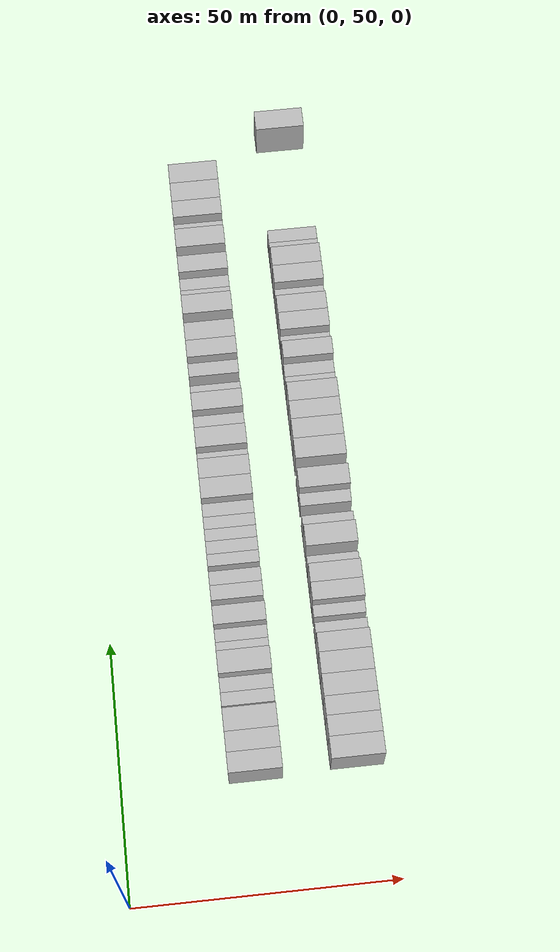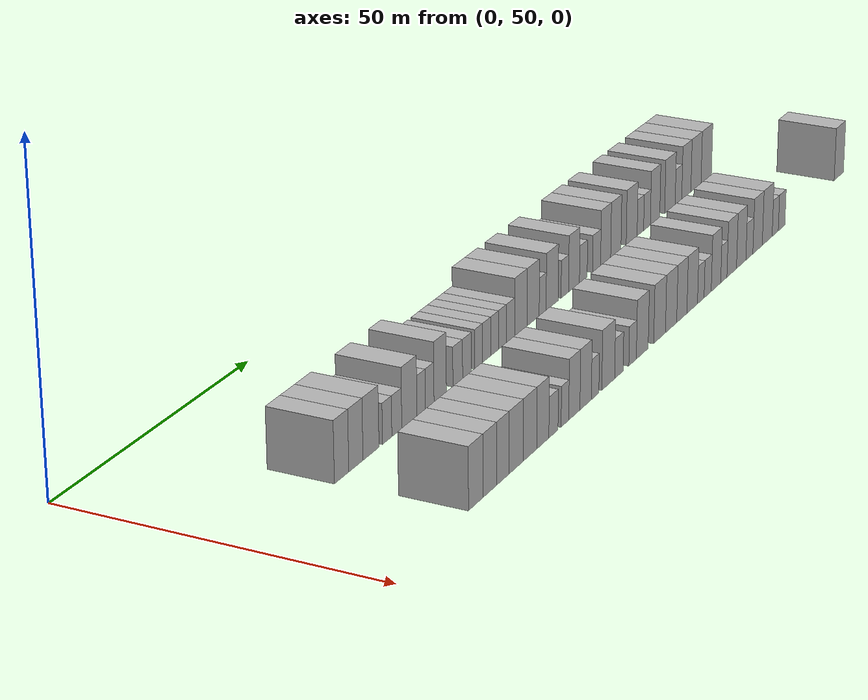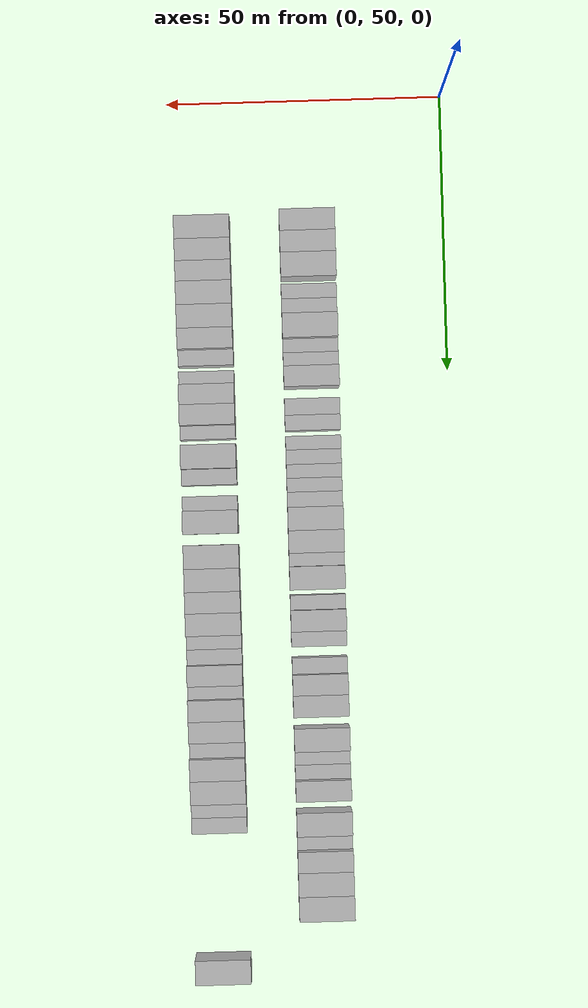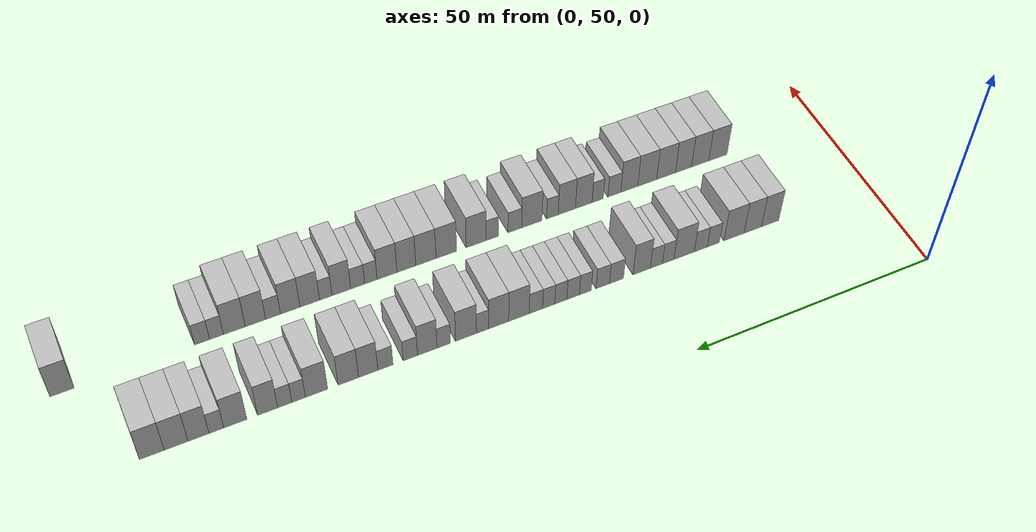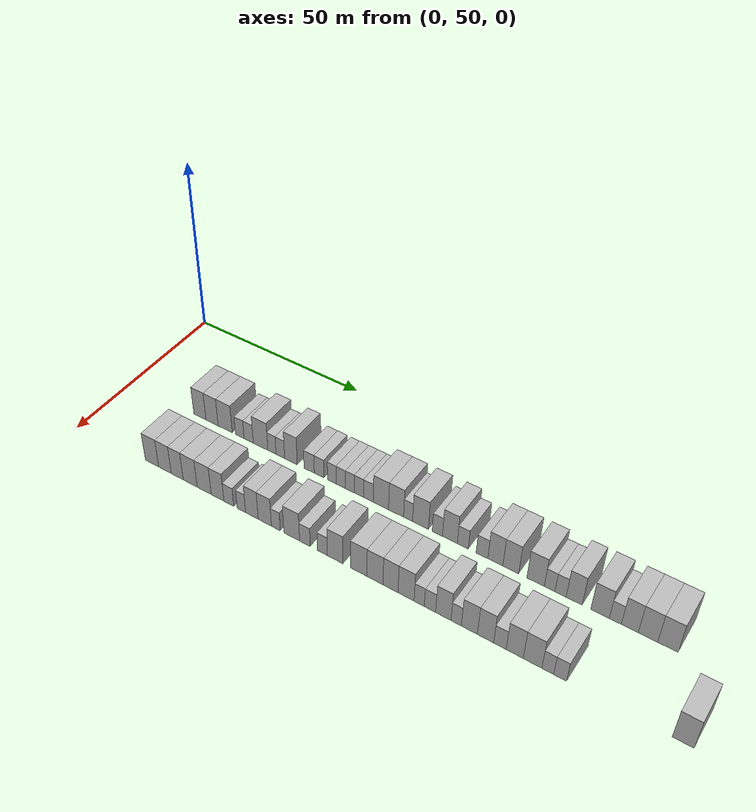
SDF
<sdf version="1.6">
 <world name="default">
  <model name="building_67">
   <static>1</static>
   <pose>25.0000 72.7585 0 0.000000 0.000000 0.000000</pose>
   <link name="link">
    <pose>0 0 4.50 0 0 0</pose>
    <collision name="collision"><geometry><box><size>10.0000 3.8760 9.0000</size></box></geometry></collision>
    <visual name="visual">
     <cast_shadows>0</cast_shadows>
     <geometry><box><size>10.0000 3.8760 9.0000</size></box></geometry>
     <material>
      <script>
       <uri>model://HANNAS_wall/materials/scripts</uri>
       <uri>model://HANNAS_wall/materials/textures</uri>
       <name>vrc/HANNAS_wall</name>
      </script>
     </material>
    </visual>
   </link>
  </model>
  <model name="building_68">
   <static>1</static>
   <pose>25.0000 76.6357 0 0.000000 0.000000 0.000000</pose>
   <link name="link">
    <pose>0 0 4.50 0 0 0</pose>
    <collision name="collision"><geometry><box><size>10.0000 3.8783 9.0000</size></box></geometry></collision>
    <visual name="visual">
     <cast_shadows>0</cast_shadows>
     <geometry><box><size>10.0000 3.8783 9.0000</size></box></geometry>
     <material>
      <script>
       <uri>model://HANNAS_wall/materials/scripts</uri>
       <uri>model://HANNAS_wall/materials/textures</uri>
       <name>vrc/HANNAS_wall</name>
      </script>
     </material>
    </visual>
   </link>
  </model>
  <model name="building_69">
   <static>1</static>
   <pose>25.0000 80.7984 0 0.000000 0.000000 0.000000</pose>
   <link name="link">
    <pose>0 0 4.50 0 0 0</pose>
    <collision name="collision"><geometry><box><size>10.0000 4.4471 9.0000</size></box></geometry></collision>
    <visual name="visual">
     <cast_shadows>0</cast_shadows>
     <geometry><box><size>10.0000 4.4471 9.0000</size></box></geometry>
     <material>
      <script>
       <uri>model://HANNAS_wall/materials/scripts</uri>
       <uri>model://HANNAS_wall/materials/textures</uri>
       <name>vrc/HANNAS_wall</name>
      </script>
     </material>
    </visual>
   </link>
  </model>
  <model name="building_70">
   <static>1</static>
   <pose>25.0000 85.3449 0 0.000000 0.000000 0.000000</pose>
   <link name="link">
    <pose>0 0 3.00 0 0 0</pose>
    <collision name="collision"><geometry><box><size>10.0000 2.6458 6.0000</size></box></geometry></collision>
    <visual name="visual">
     <cast_shadows>0</cast_shadows>
     <geometry><box><size>10.0000 2.6458 6.0000</size></box></geometry>
     <material>
      <script>
       <uri>model://HANNAS_wall/materials/scripts</uri>
       <uri>model://HANNAS_wall/materials/textures</uri>
       <name>vrc/HANNAS_wall</name>
      </script>
     </material>
    </visual>
   </link>
  </model>
  <model name="building_71">
   <static>1</static>
   <pose>25.0000 88.0918 0 0.000000 0.000000 0.000000</pose>
   <link name="link">
    <pose>0 0 3.00 0 0 0</pose>
    <collision name="collision"><geometry><box><size>10.0000 2.8480 6.0000</size></box></geometry></collision>
    <visual name="visual">
     <cast_shadows>0</cast_shadows>
     <geometry><box><size>10.0000 2.8480 6.0000</size></box></geometry>
     <material>
      <script>
       <uri>model://HANNAS_wall/materials/scripts</uri>
       <uri>model://HANNAS_wall/materials/textures</uri>
       <name>vrc/HANNAS_wall</name>
      </script>
     </material>
    </visual>
   </link>
  </model>
  <model name="building_72">
   <static>1</static>
   <pose>25.0000 91.7264 0 0.000000 0.000000 0.000000</pose>
   <link name="link">
    <pose>0 0 4.50 0 0 0</pose>
    <collision name="collision"><geometry><box><size>10.0000 4.4214 9.0000</size></box></geometry></collision>
    <visual name="visual">
     <cast_shadows>0</cast_shadows>
     <geometry><box><size>10.0000 4.4214 9.0000</size></box></geometry>
     <material>
      <script>
       <uri>model://HANNAS_wall/materials/scripts</uri>
       <uri>model://HANNAS_wall/materials/textures</uri>
       <name>vrc/HANNAS_wall</name>
      </script>
     </material>
    </visual>
   </link>
  </model>
  <model name="building_73">
   <static>1</static>
   <pose>25.0000 95.1813 0 0.000000 0.000000 0.000000</pose>
   <link name="link">
    <pose>0 0 3.00 0 0 0</pose>
    <collision name="collision"><geometry><box><size>10.0000 2.4884 6.0000</size></box></geometry></collision>
    <visual name="visual">
     <cast_shadows>0</cast_shadows>
     <geometry><box><size>10.0000 2.4884 6.0000</size></box></geometry>
     <material>
      <script>
       <uri>model://HANNAS_wall/materials/scripts</uri>
       <uri>model://HANNAS_wall/materials/textures</uri>
       <name>vrc/HANNAS_wall</name>
      </script>
     </material>
    </visual>
   </link>
  </model>
  <model name="building_74">
   <static>1</static>
   <pose>25.0000 97.7119 0 0.000000 0.000000 0.000000</pose>
   <link name="link">
    <pose>0 0 3.00 0 0 0</pose>
    <collision name="collision"><geometry><box><size>10.0000 2.5727 6.0000</size></box></geometry></collision>
    <visual name="visual">
     <cast_shadows>0</cast_shadows>
     <geometry><box><size>10.0000 2.5727 6.0000</size></box></geometry>
     <material>
      <script>
       <uri>model://HANNAS_wall/materials/scripts</uri>
       <uri>model://HANNAS_wall/materials/textures</uri>
       <name>vrc/HANNAS_wall</name>
      </script>
     </material>
    </visual>
   </link>
  </model>
  <model name="building_75">
   <static>1</static>
   <pose>25.0000 100.8656 0 0.000000 0.000000 0.000000</pose>
   <link name="link">
    <pose>0 0 4.50 0 0 0</pose>
    <collision name="collision"><geometry><box><size>10.0000 3.7347 9.0000</size></box></geometry></collision>
    <visual name="visual">
     <cast_shadows>0</cast_shadows>
     <geometry><box><size>10.0000 3.7347 9.0000</size></box></geometry>
     <material>
      <script>
       <uri>model://HANNAS_wall/materials/scripts</uri>
       <uri>model://HANNAS_wall/materials/textures</uri>
       <name>vrc/HANNAS_wall</name>
      </script>
     </material>
    </visual>
   </link>
  </model>
  <model name="building_76">
   <static>1</static>
   <pose>25.0000 106.2307 0 0.000000 0.000000 0.000000</pose>
   <link name="link">
    <pose>0 0 3.00 0 0 0</pose>
    <collision name="collision"><geometry><box><size>10.0000 2.9956 6.0000</size></box></geometry></collision>
    <visual name="visual">
     <cast_shadows>0</cast_shadows>
     <geometry><box><size>10.0000 2.9956 6.0000</size></box></geometry>
     <material>
      <script>
       <uri>model://HANNAS_wall/materials/scripts</uri>
       <uri>model://HANNAS_wall/materials/textures</uri>
       <name>vrc/HANNAS_wall</name>
      </script>
     </material>
    </visual>
   </link>
  </model>
  <model name="building_77">
   <static>1</static>
   <pose>25.0000 109.1348 0 0.000000 0.000000 0.000000</pose>
   <link name="link">
    <pose>0 0 3.00 0 0 0</pose>
    <collision name="collision"><geometry><box><size>10.0000 2.8125 6.0000</size></box></geometry></collision>
    <visual name="visual">
     <cast_shadows>0</cast_shadows>
     <geometry><box><size>10.0000 2.8125 6.0000</size></box></geometry>
     <material>
      <script>
       <uri>model://HANNAS_wall/materials/scripts</uri>
       <uri>model://HANNAS_wall/materials/textures</uri>
       <name>vrc/HANNAS_wall</name>
      </script>
     </material>
    </visual>
   </link>
  </model>
  <model name="building_78">
   <static>1</static>
   <pose>25.0000 112.7714 0 0.000000 0.000000 0.000000</pose>
   <link name="link">
    <pose>0 0 3.00 0 0 0</pose>
    <collision name="collision"><geometry><box><size>10.0000 2.4606 6.0000</size></box></geometry></collision>
    <visual name="visual">
     <cast_shadows>0</cast_shadows>
     <geometry><box><size>10.0000 2.4606 6.0000</size></box></geometry>
     <material>
      <script>
       <uri>model://HANNAS_wall/materials/scripts</uri>
       <uri>model://HANNAS_wall/materials/textures</uri>
       <name>vrc/HANNAS_wall</name>
      </script>
     </material>
    </visual>
   </link>
  </model>
  <model name="building_79">
   <static>1</static>
   <pose>25.0000 115.3239 0 0.000000 0.000000 0.000000</pose>
   <link name="link">
    <pose>0 0 3.00 0 0 0</pose>
    <collision name="collision"><geometry><box><size>10.0000 2.6445 6.0000</size></box></geometry></collision>
    <visual name="visual">
     <cast_shadows>0</cast_shadows>
     <geometry><box><size>10.0000 2.6445 6.0000</size></box></geometry>
     <material>
      <script>
       <uri>model://HANNAS_wall/materials/scripts</uri>
       <uri>model://HANNAS_wall/materials/textures</uri>
       <name>vrc/HANNAS_wall</name>
      </script>
     </material>
    </visual>
   </link>
  </model>
  <model name="building_80">
   <static>1</static>
   <pose>25.0000 117.8810 0 0.000000 0.000000 0.000000</pose>
   <link name="link">
    <pose>0 0 3.00 0 0 0</pose>
    <collision name="collision"><geometry><box><size>10.0000 2.4697 6.0000</size></box></geometry></collision>
    <visual name="visual">
     <cast_shadows>0</cast_shadows>
     <geometry><box><size>10.0000 2.4697 6.0000</size></box></geometry>
     <material>
      <script>
       <uri>model://HANNAS_wall/materials/scripts</uri>
       <uri>model://HANNAS_wall/materials/textures</uri>
       <name>vrc/HANNAS_wall</name>
      </script>
     </material>
    </visual>
   </link>
  </model>
  <model name="building_81">
   <static>1</static>
   <pose>25.0000 120.3787 0 0.000000 0.000000 0.000000</pose>
   <link name="link">
    <pose>0 0 3.00 0 0 0</pose>
    <collision name="collision"><geometry><box><size>10.0000 2.5256 6.0000</size></box></geometry></collision>
    <visual name="visual">
     <cast_shadows>0</cast_shadows>
     <geometry><box><size>10.0000 2.5256 6.0000</size></box></geometry>
     <material>
      <script>
       <uri>model://HANNAS_wall/materials/scripts</uri>
       <uri>model://HANNAS_wall/materials/textures</uri>
       <name>vrc/HANNAS_wall</name>
      </script>
     </material>
    </visual>
   </link>
  </model>
  <model name="building_82">
   <static>1</static>
   <pose>25.0000 123.0207 0 0.000000 0.000000 0.000000</pose>
   <link name="link">
    <pose>0 0 3.00 0 0 0</pose>
    <collision name="collision"><geometry><box><size>10.0000 2.7585 6.0000</size></box></geometry></collision>
    <visual name="visual">
     <cast_shadows>0</cast_shadows>
     <geometry><box><size>10.0000 2.7585 6.0000</size></box></geometry>
     <material>
      <script>
       <uri>model://HANNAS_wall/materials/scripts</uri>
       <uri>model://HANNAS_wall/materials/textures</uri>
       <name>vrc/HANNAS_wall</name>
      </script>
     </material>
    </visual>
   </link>
  </model>
  <model name="building_83">
   <static>1</static>
   <pose>25.0000 126.5004 0 0.000000 0.000000 0.000000</pose>
   <link name="link">
    <pose>0 0 4.50 0 0 0</pose>
    <collision name="collision"><geometry><box><size>10.0000 4.2008 9.0000</size></box></geometry></collision>
    <visual name="visual">
     <cast_shadows>0</cast_shadows>
     <geometry><box><size>10.0000 4.2008 9.0000</size></box></geometry>
     <material>
      <script>
       <uri>model://HANNAS_wall/materials/scripts</uri>
       <uri>model://HANNAS_wall/materials/textures</uri>
       <name>vrc/HANNAS_wall</name>
      </script>
     </material>
    </visual>
   </link>
  </model>
  <model name="building_84">
   <static>1</static>
   <pose>25.0000 130.6376 0 0.000000 0.000000 0.000000</pose>
   <link name="link">
    <pose>0 0 4.50 0 0 0</pose>
    <collision name="collision"><geometry><box><size>10.0000 4.0737 9.0000</size></box></geometry></collision>
    <visual name="visual">
     <cast_shadows>0</cast_shadows>
     <geometry><box><size>10.0000 4.0737 9.0000</size></box></geometry>
     <material>
      <script>
       <uri>model://HANNAS_wall/materials/scripts</uri>
       <uri>model://HANNAS_wall/materials/textures</uri>
       <name>vrc/HANNAS_wall</name>
      </script>
     </material>
    </visual>
   </link>
  </model>
  <model name="building_85">
   <static>1</static>
   <pose>25.0000 133.8751 0 0.000000 0.000000 0.000000</pose>
   <link name="link">
    <pose>0 0 3.00 0 0 0</pose>
    <collision name="collision"><geometry><box><size>10.0000 2.4012 6.0000</size></box></geometry></collision>
    <visual name="visual">
     <cast_shadows>0</cast_shadows>
     <geometry><box><size>10.0000 2.4012 6.0000</size></box></geometry>
     <material>
      <script>
       <uri>model://HANNAS_wall/materials/scripts</uri>
       <uri>model://HANNAS_wall/materials/textures</uri>
       <name>vrc/HANNAS_wall</name>
      </script>
     </material>
    </visual>
   </link>
  </model>
  <model name="building_86">
   <static>1</static>
   <pose>25.0000 137.1848 0 0.000000 0.000000 0.000000</pose>
   <link name="link">
    <pose>0 0 4.50 0 0 0</pose>
    <collision name="collision"><geometry><box><size>10.0000 4.2183 9.0000</size></box></geometry></collision>
    <visual name="visual">
     <cast_shadows>0</cast_shadows>
     <geometry><box><size>10.0000 4.2183 9.0000</size></box></geometry>
     <material>
      <script>
       <uri>model://HANNAS_wall/materials/scripts</uri>
       <uri>model://HANNAS_wall/materials/textures</uri>
       <name>vrc/HANNAS_wall</name>
      </script>
     </material>
    </visual>
   </link>
  </model>
  <model name="building_87">
   <static>1</static>
   <pose>25.0000 141.6239 0 0.000000 0.000000 0.000000</pose>
   <link name="link">
    <pose>0 0 3.00 0 0 0</pose>
    <collision name="collision"><geometry><box><size>10.0000 2.6598 6.0000</size></box></geometry></collision>
    <visual name="visual">
     <cast_shadows>0</cast_shadows>
     <geometry><box><size>10.0000 2.6598 6.0000</size></box></geometry>
     <material>
      <script>
       <uri>model://HANNAS_wall/materials/scripts</uri>
       <uri>model://HANNAS_wall/materials/textures</uri>
       <name>vrc/HANNAS_wall</name>
      </script>
     </material>
    </visual>
   </link>
  </model>
  <model name="building_88">
   <static>1</static>
   <pose>25.0000 144.8832 0 0.000000 0.000000 0.000000</pose>
   <link name="link">
    <pose>0 0 4.50 0 0 0</pose>
    <collision name="collision"><geometry><box><size>10.0000 3.8589 9.0000</size></box></geometry></collision>
    <visual name="visual">
     <cast_shadows>0</cast_shadows>
     <geometry><box><size>10.0000 3.8589 9.0000</size></box></geometry>
     <material>
      <script>
       <uri>model://HANNAS_wall/materials/scripts</uri>
       <uri>model://HANNAS_wall/materials/textures</uri>
       <name>vrc/HANNAS_wall</name>
      </script>
     </material>
    </visual>
   </link>
  </model>
  <model name="building_89">
   <static>1</static>
   <pose>25.0000 148.2148 0 0.000000 0.000000 0.000000</pose>
   <link name="link">
    <pose>0 0 3.00 0 0 0</pose>
    <collision name="collision"><geometry><box><size>10.0000 2.8042 6.0000</size></box></geometry></collision>
    <visual name="visual">
     <cast_shadows>0</cast_shadows>
     <geometry><box><size>10.0000 2.8042 6.0000</size></box></geometry>
     <material>
      <script>
       <uri>model://HANNAS_wall/materials/scripts</uri>
       <uri>model://HANNAS_wall/materials/textures</uri>
       <name>vrc/HANNAS_wall</name>
      </script>
     </material>
    </visual>
   </link>
  </model>
  <model name="building_90">
   <static>1</static>
   <pose>25.0000 153.0869 0 0.000000 0.000000 0.000000</pose>
   <link name="link">
    <pose>0 0 3.00 0 0 0</pose>
    <collision name="collision"><geometry><box><size>10.0000 2.9399 6.0000</size></box></geometry></collision>
    <visual name="visual">
     <cast_shadows>0</cast_shadows>
     <geometry><box><size>10.0000 2.9399 6.0000</size></box></geometry>
     <material>
      <script>
       <uri>model://HANNAS_wall/materials/scripts</uri>
       <uri>model://HANNAS_wall/materials/textures</uri>
       <name>vrc/HANNAS_wall</name>
      </script>
     </material>
    </visual>
   </link>
  </model>
  <model name="building_91">
   <static>1</static>
   <pose>25.0000 156.4311 0 0.000000 0.000000 0.000000</pose>
   <link name="link">
    <pose>0 0 4.50 0 0 0</pose>
    <collision name="collision"><geometry><box><size>10.0000 3.7486 9.0000</size></box></geometry></collision>
    <visual name="visual">
     <cast_shadows>0</cast_shadows>
     <geometry><box><size>10.0000 3.7486 9.0000</size></box></geometry>
     <material>
      <script>
       <uri>model://HANNAS_wall/materials/scripts</uri>
       <uri>model://HANNAS_wall/materials/textures</uri>
       <name>vrc/HANNAS_wall</name>
      </script>
     </material>
    </visual>
   </link>
  </model>
  <model name="building_92">
   <static>1</static>
   <pose>25.0000 160.2554 0 0.000000 0.000000 0.000000</pose>
   <link name="link">
    <pose>0 0 4.50 0 0 0</pose>
    <collision name="collision"><geometry><box><size>10.0000 3.9000 9.0000</size></box></geometry></collision>
    <visual name="visual">
     <cast_shadows>0</cast_shadows>
     <geometry><box><size>10.0000 3.9000 9.0000</size></box></geometry>
     <material>
      <script>
       <uri>model://HANNAS_wall/materials/scripts</uri>
       <uri>model://HANNAS_wall/materials/textures</uri>
       <name>vrc/HANNAS_wall</name>
      </script>
     </material>
    </visual>
   </link>
  </model>
  <model name="building_93">
   <static>1</static>
   <pose>25.0000 166.3129 0 0.000000 0.000000 0.000000</pose>
   <link name="link">
    <pose>0 0 4.50 0 0 0</pose>
    <collision name="collision"><geometry><box><size>10.0000 4.2150 9.0000</size></box></geometry></collision>
    <visual name="visual">
     <cast_shadows>0</cast_shadows>
     <geometry><box><size>10.0000 4.2150 9.0000</size></box></geometry>
     <material>
      <script>
       <uri>model://HANNAS_wall/materials/scripts</uri>
       <uri>model://HANNAS_wall/materials/textures</uri>
       <name>vrc/HANNAS_wall</name>
      </script>
     </material>
    </visual>
   </link>
  </model>
  <model name="building_94">
   <static>1</static>
   <pose>25.0000 169.6944 0 0.000000 0.000000 0.000000</pose>
   <link name="link">
    <pose>0 0 3.00 0 0 0</pose>
    <collision name="collision"><geometry><box><size>10.0000 2.5481 6.0000</size></box></geometry></collision>
    <visual name="visual">
     <cast_shadows>0</cast_shadows>
     <geometry><box><size>10.0000 2.5481 6.0000</size></box></geometry>
     <material>
      <script>
       <uri>model://HANNAS_wall/materials/scripts</uri>
       <uri>model://HANNAS_wall/materials/textures</uri>
       <name>vrc/HANNAS_wall</name>
      </script>
     </material>
    </visual>
   </link>
  </model>
  <model name="building_95">
   <static>1</static>
   <pose>25.0000 172.2940 0 0.000000 0.000000 0.000000</pose>
   <link name="link">
    <pose>0 0 3.00 0 0 0</pose>
    <collision name="collision"><geometry><box><size>10.0000 2.6511 6.0000</size></box></geometry></collision>
    <visual name="visual">
     <cast_shadows>0</cast_shadows>
     <geometry><box><size>10.0000 2.6511 6.0000</size></box></geometry>
     <material>
      <script>
       <uri>model://HANNAS_wall/materials/scripts</uri>
       <uri>model://HANNAS_wall/materials/textures</uri>
       <name>vrc/HANNAS_wall</name>
      </script>
     </material>
    </visual>
   </link>
  </model>
  <model name="building_96">
   <static>1</static>
   <pose>25.0000 175.4958 0 0.000000 0.000000 0.000000</pose>
   <link name="link">
    <pose>0 0 4.50 0 0 0</pose>
    <collision name="collision"><geometry><box><size>10.0000 3.7526 9.0000</size></box></geometry></collision>
    <visual name="visual">
     <cast_shadows>0</cast_shadows>
     <geometry><box><size>10.0000 3.7526 9.0000</size></box></geometry>
     <material>
      <script>
       <uri>model://HANNAS_wall/materials/scripts</uri>
       <uri>model://HANNAS_wall/materials/textures</uri>
       <name>vrc/HANNAS_wall</name>
      </script>
     </material>
    </visual>
   </link>
  </model>
  <model name="building_97">
   <static>1</static>
   <pose>25.0000 181.5063 0 0.000000 0.000000 0.000000</pose>
   <link name="link">
    <pose>0 0 4.50 0 0 0</pose>
    <collision name="collision"><geometry><box><size>10.0000 4.2684 9.0000</size></box></geometry></collision>
    <visual name="visual">
     <cast_shadows>0</cast_shadows>
     <geometry><box><size>10.0000 4.2684 9.0000</size></box></geometry>
     <material>
      <script>
       <uri>model://HANNAS_wall/materials/scripts</uri>
       <uri>model://HANNAS_wall/materials/textures</uri>
       <name>vrc/HANNAS_wall</name>
      </script>
     </material>
    </visual>
   </link>
  </model>
  <model name="building_98">
   <static>1</static>
   <pose>25.0000 184.9955 0 0.000000 0.000000 0.000000</pose>
   <link name="link">
    <pose>0 0 3.00 0 0 0</pose>
    <collision name="collision"><geometry><box><size>10.0000 2.7100 6.0000</size></box></geometry></collision>
    <visual name="visual">
     <cast_shadows>0</cast_shadows>
     <geometry><box><size>10.0000 2.7100 6.0000</size></box></geometry>
     <material>
      <script>
       <uri>model://HANNAS_wall/materials/scripts</uri>
       <uri>model://HANNAS_wall/materials/textures</uri>
       <name>vrc/HANNAS_wall</name>
      </script>
     </material>
    </visual>
   </link>
  </model>
  <model name="building_99">
   <static>1</static>
   <pose>25.0000 188.2530 0 0.000000 0.000000 0.000000</pose>
   <link name="link">
    <pose>0 0 4.50 0 0 0</pose>
    <collision name="collision"><geometry><box><size>10.0000 3.8049 9.0000</size></box></geometry></collision>
    <visual name="visual">
     <cast_shadows>0</cast_shadows>
     <geometry><box><size>10.0000 3.8049 9.0000</size></box></geometry>
     <material>
      <script>
       <uri>model://HANNAS_wall/materials/scripts</uri>
       <uri>model://HANNAS_wall/materials/textures</uri>
       <name>vrc/HANNAS_wall</name>
      </script>
     </material>
    </visual>
   </link>
  </model>
  <model name="building_100">
   <static>1</static>
   <pose>25.0000 192.3092 0 0.000000 0.000000 0.000000</pose>
   <link name="link">
    <pose>0 0 4.50 0 0 0</pose>
    <collision name="collision"><geometry><box><size>10.0000 4.3074 9.0000</size></box></geometry></collision>
    <visual name="visual">
     <cast_shadows>0</cast_shadows>
     <geometry><box><size>10.0000 4.3074 9.0000</size></box></geometry>
     <material>
      <script>
       <uri>model://HANNAS_wall/materials/scripts</uri>
       <uri>model://HANNAS_wall/materials/textures</uri>
       <name>vrc/HANNAS_wall</name>
      </script>
     </material>
    </visual>
   </link>
  </model>
  <model name="building_101">
   <static>1</static>
   <pose>25.0000 196.6898 0 0.000000 0.000000 0.000000</pose>
   <link name="link">
    <pose>0 0 4.50 0 0 0</pose>
    <collision name="collision"><geometry><box><size>10.0000 4.4540 9.0000</size></box></geometry></collision>
    <visual name="visual">
     <cast_shadows>0</cast_shadows>
     <geometry><box><size>10.0000 4.4540 9.0000</size></box></geometry>
     <material>
      <script>
       <uri>model://HANNAS_wall/materials/scripts</uri>
       <uri>model://HANNAS_wall/materials/textures</uri>
       <name>vrc/HANNAS_wall</name>
      </script>
     </material>
    </visual>
   </link>
  </model>
  <model name="building_167">
   <static>1</static>
   <pose>44.0000 73.5325 0 0.000000 0.000000 0.000000</pose>
   <link name="link">
    <pose>0 0 4.50 0 0 0</pose>
    <collision name="collision"><geometry><box><size>10.0000 4.1712 9.0000</size></box></geometry></collision>
    <visual name="visual">
     <cast_shadows>0</cast_shadows>
     <geometry><box><size>10.0000 4.1712 9.0000</size></box></geometry>
     <material>
      <script>
       <uri>model://HANNAS_wall/materials/scripts</uri>
       <uri>model://HANNAS_wall/materials/textures</uri>
       <name>vrc/HANNAS_wall</name>
      </script>
     </material>
    </visual>
   </link>
  </model>
  <model name="building_168">
   <static>1</static>
   <pose>44.0000 77.5878 0 0.000000 0.000000 0.000000</pose>
   <link name="link">
    <pose>0 0 4.50 0 0 0</pose>
    <collision name="collision"><geometry><box><size>10.0000 3.9394 9.0000</size></box></geometry></collision>
    <visual name="visual">
     <cast_shadows>0</cast_shadows>
     <geometry><box><size>10.0000 3.9394 9.0000</size></box></geometry>
     <material>
      <script>
       <uri>model://HANNAS_wall/materials/scripts</uri>
       <uri>model://HANNAS_wall/materials/textures</uri>
       <name>vrc/HANNAS_wall</name>
      </script>
     </material>
    </visual>
   </link>
  </model>
  <model name="building_169">
   <static>1</static>
   <pose>44.0000 81.3917 0 0.000000 0.000000 0.000000</pose>
   <link name="link">
    <pose>0 0 4.50 0 0 0</pose>
    <collision name="collision"><geometry><box><size>10.0000 3.6685 9.0000</size></box></geometry></collision>
    <visual name="visual">
     <cast_shadows>0</cast_shadows>
     <geometry><box><size>10.0000 3.6685 9.0000</size></box></geometry>
     <material>
      <script>
       <uri>model://HANNAS_wall/materials/scripts</uri>
       <uri>model://HANNAS_wall/materials/textures</uri>
       <name>vrc/HANNAS_wall</name>
      </script>
     </material>
    </visual>
   </link>
  </model>
  <model name="building_170">
   <static>1</static>
   <pose>44.0000 85.3385 0 0.000000 0.000000 0.000000</pose>
   <link name="link">
    <pose>0 0 4.50 0 0 0</pose>
    <collision name="collision"><geometry><box><size>10.0000 4.2251 9.0000</size></box></geometry></collision>
    <visual name="visual">
     <cast_shadows>0</cast_shadows>
     <geometry><box><size>10.0000 4.2251 9.0000</size></box></geometry>
     <material>
      <script>
       <uri>model://HANNAS_wall/materials/scripts</uri>
       <uri>model://HANNAS_wall/materials/textures</uri>
       <name>vrc/HANNAS_wall</name>
      </script>
     </material>
    </visual>
   </link>
  </model>
  <model name="building_171">
   <static>1</static>
   <pose>44.0000 89.5633 0 0.000000 0.000000 0.000000</pose>
   <link name="link">
    <pose>0 0 4.50 0 0 0</pose>
    <collision name="collision"><geometry><box><size>10.0000 4.2243 9.0000</size></box></geometry></collision>
    <visual name="visual">
     <cast_shadows>0</cast_shadows>
     <geometry><box><size>10.0000 4.2243 9.0000</size></box></geometry>
     <material>
      <script>
       <uri>model://HANNAS_wall/materials/scripts</uri>
       <uri>model://HANNAS_wall/materials/textures</uri>
       <name>vrc/HANNAS_wall</name>
      </script>
     </material>
    </visual>
   </link>
  </model>
  <model name="building_172">
   <static>1</static>
   <pose>44.0000 93.5582 0 0.000000 0.000000 0.000000</pose>
   <link name="link">
    <pose>0 0 4.50 0 0 0</pose>
    <collision name="collision"><geometry><box><size>10.0000 3.7656 9.0000</size></box></geometry></collision>
    <visual name="visual">
     <cast_shadows>0</cast_shadows>
     <geometry><box><size>10.0000 3.7656 9.0000</size></box></geometry>
     <material>
      <script>
       <uri>model://HANNAS_wall/materials/scripts</uri>
       <uri>model://HANNAS_wall/materials/textures</uri>
       <name>vrc/HANNAS_wall</name>
      </script>
     </material>
    </visual>
   </link>
  </model>
  <model name="building_173">
   <static>1</static>
   <pose>44.0000 96.8838 0 0.000000 0.000000 0.000000</pose>
   <link name="link">
    <pose>0 0 3.00 0 0 0</pose>
    <collision name="collision"><geometry><box><size>10.0000 2.8855 6.0000</size></box></geometry></collision>
    <visual name="visual">
     <cast_shadows>0</cast_shadows>
     <geometry><box><size>10.0000 2.8855 6.0000</size></box></geometry>
     <material>
      <script>
       <uri>model://HANNAS_wall/materials/scripts</uri>
       <uri>model://HANNAS_wall/materials/textures</uri>
       <name>vrc/HANNAS_wall</name>
      </script>
     </material>
    </visual>
   </link>
  </model>
  <model name="building_174">
   <static>1</static>
   <pose>44.0000 100.5464 0 0.000000 0.000000 0.000000</pose>
   <link name="link">
    <pose>0 0 3.00 0 0 0</pose>
    <collision name="collision"><geometry><box><size>10.0000 2.4397 6.0000</size></box></geometry></collision>
    <visual name="visual">
     <cast_shadows>0</cast_shadows>
     <geometry><box><size>10.0000 2.4397 6.0000</size></box></geometry>
     <material>
      <script>
       <uri>model://HANNAS_wall/materials/scripts</uri>
       <uri>model://HANNAS_wall/materials/textures</uri>
       <name>vrc/HANNAS_wall</name>
      </script>
     </material>
    </visual>
   </link>
  </model>
  <model name="building_175">
   <static>1</static>
   <pose>44.0000 103.5829 0 0.000000 0.000000 0.000000</pose>
   <link name="link">
    <pose>0 0 4.50 0 0 0</pose>
    <collision name="collision"><geometry><box><size>10.0000 3.6333 9.0000</size></box></geometry></collision>
    <visual name="visual">
     <cast_shadows>0</cast_shadows>
     <geometry><box><size>10.0000 3.6333 9.0000</size></box></geometry>
     <material>
      <script>
       <uri>model://HANNAS_wall/materials/scripts</uri>
       <uri>model://HANNAS_wall/materials/textures</uri>
       <name>vrc/HANNAS_wall</name>
      </script>
     </material>
    </visual>
   </link>
  </model>
  <model name="building_176">
   <static>1</static>
   <pose>44.0000 107.2795 0 0.000000 0.000000 0.000000</pose>
   <link name="link">
    <pose>0 0 4.50 0 0 0</pose>
    <collision name="collision"><geometry><box><size>10.0000 3.7599 9.0000</size></box></geometry></collision>
    <visual name="visual">
     <cast_shadows>0</cast_shadows>
     <geometry><box><size>10.0000 3.7599 9.0000</size></box></geometry>
     <material>
      <script>
       <uri>model://HANNAS_wall/materials/scripts</uri>
       <uri>model://HANNAS_wall/materials/textures</uri>
       <name>vrc/HANNAS_wall</name>
      </script>
     </material>
    </visual>
   </link>
  </model>
  <model name="building_177">
   <static>1</static>
   <pose>44.0000 110.4095 0 0.000000 0.000000 0.000000</pose>
   <link name="link">
    <pose>0 0 3.00 0 0 0</pose>
    <collision name="collision"><geometry><box><size>10.0000 2.5001 6.0000</size></box></geometry></collision>
    <visual name="visual">
     <cast_shadows>0</cast_shadows>
     <geometry><box><size>10.0000 2.5001 6.0000</size></box></geometry>
     <material>
      <script>
       <uri>model://HANNAS_wall/materials/scripts</uri>
       <uri>model://HANNAS_wall/materials/textures</uri>
       <name>vrc/HANNAS_wall</name>
      </script>
     </material>
    </visual>
   </link>
  </model>
  <model name="building_178">
   <static>1</static>
   <pose>44.0000 114.8335 0 0.000000 0.000000 0.000000</pose>
   <link name="link">
    <pose>0 0 4.50 0 0 0</pose>
    <collision name="collision"><geometry><box><size>10.0000 4.3479 9.0000</size></box></geometry></collision>
    <visual name="visual">
     <cast_shadows>0</cast_shadows>
     <geometry><box><size>10.0000 4.3479 9.0000</size></box></geometry>
     <material>
      <script>
       <uri>model://HANNAS_wall/materials/scripts</uri>
       <uri>model://HANNAS_wall/materials/textures</uri>
       <name>vrc/HANNAS_wall</name>
      </script>
     </material>
    </visual>
   </link>
  </model>
  <model name="building_179">
   <static>1</static>
   <pose>44.0000 118.4651 0 0.000000 0.000000 0.000000</pose>
   <link name="link">
    <pose>0 0 3.00 0 0 0</pose>
    <collision name="collision"><geometry><box><size>10.0000 2.9153 6.0000</size></box></geometry></collision>
    <visual name="visual">
     <cast_shadows>0</cast_shadows>
     <geometry><box><size>10.0000 2.9153 6.0000</size></box></geometry>
     <material>
      <script>
       <uri>model://HANNAS_wall/materials/scripts</uri>
       <uri>model://HANNAS_wall/materials/textures</uri>
       <name>vrc/HANNAS_wall</name>
      </script>
     </material>
    </visual>
   </link>
  </model>
  <model name="building_180">
   <static>1</static>
   <pose>44.0000 123.2384 0 0.000000 0.000000 0.000000</pose>
   <link name="link">
    <pose>0 0 3.00 0 0 0</pose>
    <collision name="collision"><geometry><box><size>10.0000 2.6313 6.0000</size></box></geometry></collision>
    <visual name="visual">
     <cast_shadows>0</cast_shadows>
     <geometry><box><size>10.0000 2.6313 6.0000</size></box></geometry>
     <material>
      <script>
       <uri>model://HANNAS_wall/materials/scripts</uri>
       <uri>model://HANNAS_wall/materials/textures</uri>
       <name>vrc/HANNAS_wall</name>
      </script>
     </material>
    </visual>
   </link>
  </model>
  <model name="building_181">
   <static>1</static>
   <pose>44.0000 126.6539 0 0.000000 0.000000 0.000000</pose>
   <link name="link">
    <pose>0 0 4.50 0 0 0</pose>
    <collision name="collision"><geometry><box><size>10.0000 4.1998 9.0000</size></box></geometry></collision>
    <visual name="visual">
     <cast_shadows>0</cast_shadows>
     <geometry><box><size>10.0000 4.1998 9.0000</size></box></geometry>
     <material>
      <script>
       <uri>model://HANNAS_wall/materials/scripts</uri>
       <uri>model://HANNAS_wall/materials/textures</uri>
       <name>vrc/HANNAS_wall</name>
      </script>
     </material>
    </visual>
   </link>
  </model>
  <model name="building_182">
   <static>1</static>
   <pose>44.0000 132.8872 0 0.000000 0.000000 0.000000</pose>
   <link name="link">
    <pose>0 0 4.50 0 0 0</pose>
    <collision name="collision"><geometry><box><size>10.0000 4.2668 9.0000</size></box></geometry></collision>
    <visual name="visual">
     <cast_shadows>0</cast_shadows>
     <geometry><box><size>10.0000 4.2668 9.0000</size></box></geometry>
     <material>
      <script>
       <uri>model://HANNAS_wall/materials/scripts</uri>
       <uri>model://HANNAS_wall/materials/textures</uri>
       <name>vrc/HANNAS_wall</name>
      </script>
     </material>
    </visual>
   </link>
  </model>
  <model name="building_183">
   <static>1</static>
   <pose>44.0000 137.1029 0 0.000000 0.000000 0.000000</pose>
   <link name="link">
    <pose>0 0 4.50 0 0 0</pose>
    <collision name="collision"><geometry><box><size>10.0000 4.1646 9.0000</size></box></geometry></collision>
    <visual name="visual">
     <cast_shadows>0</cast_shadows>
     <geometry><box><size>10.0000 4.1646 9.0000</size></box></geometry>
     <material>
      <script>
       <uri>model://HANNAS_wall/materials/scripts</uri>
       <uri>model://HANNAS_wall/materials/textures</uri>
       <name>vrc/HANNAS_wall</name>
      </script>
     </material>
    </visual>
   </link>
  </model>
  <model name="building_184">
   <static>1</static>
   <pose>44.0000 141.1062 0 0.000000 0.000000 0.000000</pose>
   <link name="link">
    <pose>0 0 4.50 0 0 0</pose>
    <collision name="collision"><geometry><box><size>10.0000 3.8420 9.0000</size></box></geometry></collision>
    <visual name="visual">
     <cast_shadows>0</cast_shadows>
     <geometry><box><size>10.0000 3.8420 9.0000</size></box></geometry>
     <material>
      <script>
       <uri>model://HANNAS_wall/materials/scripts</uri>
       <uri>model://HANNAS_wall/materials/textures</uri>
       <name>vrc/HANNAS_wall</name>
      </script>
     </material>
    </visual>
   </link>
  </model>
  <model name="building_185">
   <static>1</static>
   <pose>44.0000 145.0498 0 0.000000 0.000000 0.000000</pose>
   <link name="link">
    <pose>0 0 4.50 0 0 0</pose>
    <collision name="collision"><geometry><box><size>10.0000 4.0452 9.0000</size></box></geometry></collision>
    <visual name="visual">
     <cast_shadows>0</cast_shadows>
     <geometry><box><size>10.0000 4.0452 9.0000</size></box></geometry>
     <material>
      <script>
       <uri>model://HANNAS_wall/materials/scripts</uri>
       <uri>model://HANNAS_wall/materials/textures</uri>
       <name>vrc/HANNAS_wall</name>
      </script>
     </material>
    </visual>
   </link>
  </model>
  <model name="building_186">
   <static>1</static>
   <pose>44.0000 148.3394 0 0.000000 0.000000 0.000000</pose>
   <link name="link">
    <pose>0 0 3.00 0 0 0</pose>
    <collision name="collision"><geometry><box><size>10.0000 2.5342 6.0000</size></box></geometry></collision>
    <visual name="visual">
     <cast_shadows>0</cast_shadows>
     <geometry><box><size>10.0000 2.5342 6.0000</size></box></geometry>
     <material>
      <script>
       <uri>model://HANNAS_wall/materials/scripts</uri>
       <uri>model://HANNAS_wall/materials/textures</uri>
       <name>vrc/HANNAS_wall</name>
      </script>
     </material>
    </visual>
   </link>
  </model>
  <model name="building_187">
   <static>1</static>
   <pose>44.0000 151.0015 0 0.000000 0.000000 0.000000</pose>
   <link name="link">
    <pose>0 0 3.00 0 0 0</pose>
    <collision name="collision"><geometry><box><size>10.0000 2.7900 6.0000</size></box></geometry></collision>
    <visual name="visual">
     <cast_shadows>0</cast_shadows>
     <geometry><box><size>10.0000 2.7900 6.0000</size></box></geometry>
     <material>
      <script>
       <uri>model://HANNAS_wall/materials/scripts</uri>
       <uri>model://HANNAS_wall/materials/textures</uri>
       <name>vrc/HANNAS_wall</name>
      </script>
     </material>
    </visual>
   </link>
  </model>
  <model name="building_188">
   <static>1</static>
   <pose>44.0000 154.2682 0 0.000000 0.000000 0.000000</pose>
   <link name="link">
    <pose>0 0 4.50 0 0 0</pose>
    <collision name="collision"><geometry><box><size>10.0000 3.7435 9.0000</size></box></geometry></collision>
    <visual name="visual">
     <cast_shadows>0</cast_shadows>
     <geometry><box><size>10.0000 3.7435 9.0000</size></box></geometry>
     <material>
      <script>
       <uri>model://HANNAS_wall/materials/scripts</uri>
       <uri>model://HANNAS_wall/materials/textures</uri>
       <name>vrc/HANNAS_wall</name>
      </script>
     </material>
    </visual>
   </link>
  </model>
  <model name="building_189">
   <static>1</static>
   <pose>44.0000 157.3871 0 0.000000 0.000000 0.000000</pose>
   <link name="link">
    <pose>0 0 3.00 0 0 0</pose>
    <collision name="collision"><geometry><box><size>10.0000 2.4943 6.0000</size></box></geometry></collision>
    <visual name="visual">
     <cast_shadows>0</cast_shadows>
     <geometry><box><size>10.0000 2.4943 6.0000</size></box></geometry>
     <material>
      <script>
       <uri>model://HANNAS_wall/materials/scripts</uri>
       <uri>model://HANNAS_wall/materials/textures</uri>
       <name>vrc/HANNAS_wall</name>
      </script>
     </material>
    </visual>
   </link>
  </model>
  <model name="building_190">
   <static>1</static>
   <pose>44.0000 160.5630 0 0.000000 0.000000 0.000000</pose>
   <link name="link">
    <pose>0 0 4.50 0 0 0</pose>
    <collision name="collision"><geometry><box><size>10.0000 3.8574 9.0000</size></box></geometry></collision>
    <visual name="visual">
     <cast_shadows>0</cast_shadows>
     <geometry><box><size>10.0000 3.8574 9.0000</size></box></geometry>
     <material>
      <script>
       <uri>model://HANNAS_wall/materials/scripts</uri>
       <uri>model://HANNAS_wall/materials/textures</uri>
       <name>vrc/HANNAS_wall</name>
      </script>
     </material>
    </visual>
   </link>
  </model>
  <model name="building_191">
   <static>1</static>
   <pose>44.0000 164.4100 0 0.000000 0.000000 0.000000</pose>
   <link name="link">
    <pose>0 0 4.50 0 0 0</pose>
    <collision name="collision"><geometry><box><size>10.0000 3.8368 9.0000</size></box></geometry></collision>
    <visual name="visual">
     <cast_shadows>0</cast_shadows>
     <geometry><box><size>10.0000 3.8368 9.0000</size></box></geometry>
     <material>
      <script>
       <uri>model://HANNAS_wall/materials/scripts</uri>
       <uri>model://HANNAS_wall/materials/textures</uri>
       <name>vrc/HANNAS_wall</name>
      </script>
     </material>
    </visual>
   </link>
  </model>
  <model name="building_192">
   <static>1</static>
   <pose>44.0000 167.7791 0 0.000000 0.000000 0.000000</pose>
   <link name="link">
    <pose>0 0 3.00 0 0 0</pose>
    <collision name="collision"><geometry><box><size>10.0000 2.9014 6.0000</size></box></geometry></collision>
    <visual name="visual">
     <cast_shadows>0</cast_shadows>
     <geometry><box><size>10.0000 2.9014 6.0000</size></box></geometry>
     <material>
      <script>
       <uri>model://HANNAS_wall/materials/scripts</uri>
       <uri>model://HANNAS_wall/materials/textures</uri>
       <name>vrc/HANNAS_wall</name>
      </script>
     </material>
    </visual>
   </link>
  </model>
  <model name="building_193">
   <static>1</static>
   <pose>44.0000 171.2051 0 0.000000 0.000000 0.000000</pose>
   <link name="link">
    <pose>0 0 4.50 0 0 0</pose>
    <collision name="collision"><geometry><box><size>10.0000 3.9506 9.0000</size></box></geometry></collision>
    <visual name="visual">
     <cast_shadows>0</cast_shadows>
     <geometry><box><size>10.0000 3.9506 9.0000</size></box></geometry>
     <material>
      <script>
       <uri>model://HANNAS_wall/materials/scripts</uri>
       <uri>model://HANNAS_wall/materials/textures</uri>
       <name>vrc/HANNAS_wall</name>
      </script>
     </material>
    </visual>
   </link>
  </model>
  <model name="building_194">
   <static>1</static>
   <pose>44.0000 175.2851 0 0.000000 0.000000 0.000000</pose>
   <link name="link">
    <pose>0 0 4.50 0 0 0</pose>
    <collision name="collision"><geometry><box><size>10.0000 4.2094 9.0000</size></box></geometry></collision>
    <visual name="visual">
     <cast_shadows>0</cast_shadows>
     <geometry><box><size>10.0000 4.2094 9.0000</size></box></geometry>
     <material>
      <script>
       <uri>model://HANNAS_wall/materials/scripts</uri>
       <uri>model://HANNAS_wall/materials/textures</uri>
       <name>vrc/HANNAS_wall</name>
      </script>
     </material>
    </visual>
   </link>
  </model>
  <model name="building_195">
   <static>1</static>
   <pose>44.0000 178.7190 0 0.000000 0.000000 0.000000</pose>
   <link name="link">
    <pose>0 0 3.00 0 0 0</pose>
    <collision name="collision"><geometry><box><size>10.0000 2.6584 6.0000</size></box></geometry></collision>
    <visual name="visual">
     <cast_shadows>0</cast_shadows>
     <geometry><box><size>10.0000 2.6584 6.0000</size></box></geometry>
     <material>
      <script>
       <uri>model://HANNAS_wall/materials/scripts</uri>
       <uri>model://HANNAS_wall/materials/textures</uri>
       <name>vrc/HANNAS_wall</name>
      </script>
     </material>
    </visual>
   </link>
  </model>
  <model name="building_196">
   <static>1</static>
   <pose>44.0000 181.4839 0 0.000000 0.000000 0.000000</pose>
   <link name="link">
    <pose>0 0 3.00 0 0 0</pose>
    <collision name="collision"><geometry><box><size>10.0000 2.8714 6.0000</size></box></geometry></collision>
    <visual name="visual">
     <cast_shadows>0</cast_shadows>
     <geometry><box><size>10.0000 2.8714 6.0000</size></box></geometry>
     <material>
      <script>
       <uri>model://HANNAS_wall/materials/scripts</uri>
       <uri>model://HANNAS_wall/materials/textures</uri>
       <name>vrc/HANNAS_wall</name>
      </script>
     </material>
    </visual>
   </link>
  </model>
  <model name="building_197">
   <static>1</static>
   <pose>44.0000 207.5285 0 0.000000 0.000000 0.000000</pose>
   <link name="link">
    <pose>0 0 4.50 0 0 0</pose>
    <collision name="collision"><geometry><box><size>10.0000 4.4059 9.0000</size></box></geometry></collision>
    <visual name="visual">
     <cast_shadows>0</cast_shadows>
     <geometry><box><size>10.0000 4.4059 9.0000</size></box></geometry>
     <material>
      <script>
       <uri>model://HANNAS_wall/materials/scripts</uri>
       <uri>model://HANNAS_wall/materials/textures</uri>
       <name>vrc/HANNAS_wall</name>
      </script>
     </material>
    </visual>
   </link>
  </model>
 </world>
</sdf>
